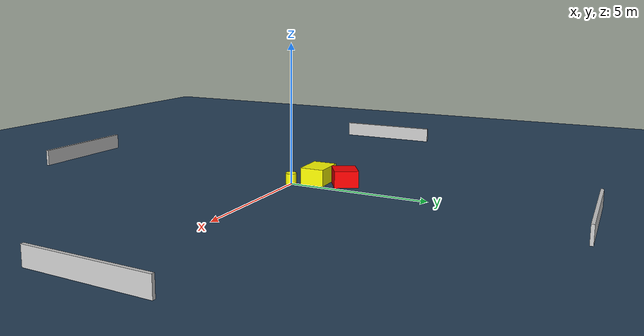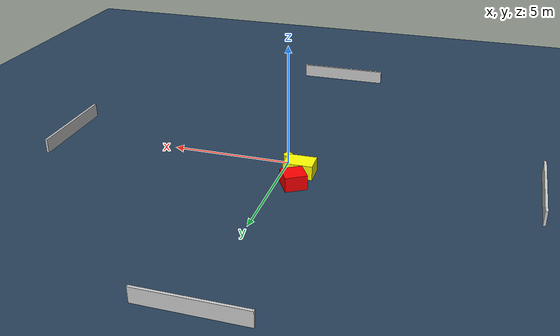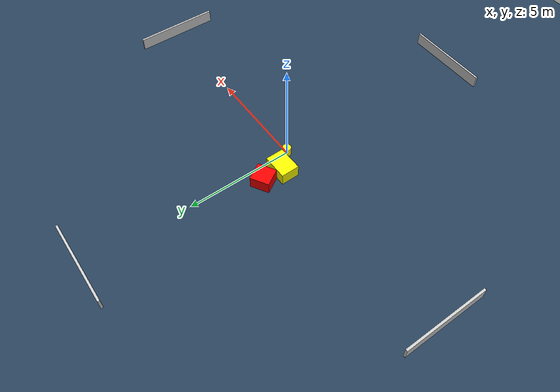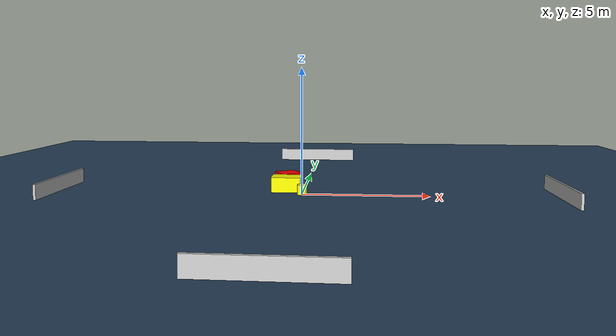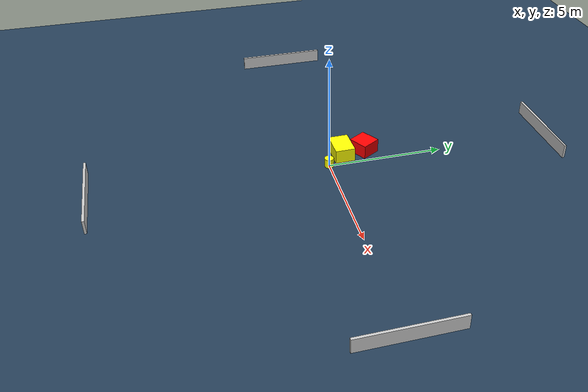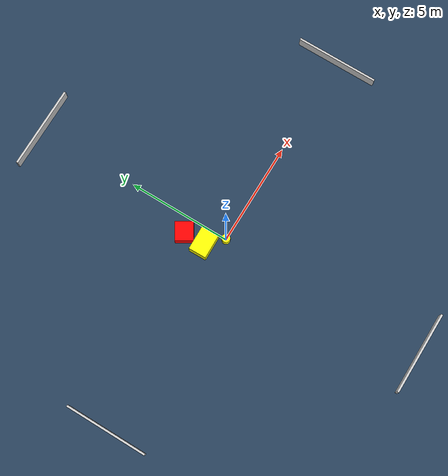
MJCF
<?xml version="1.0" ?>
<mujoco model="generated_environment">
  <option timestep="0.01" integrator="RK4" cone="elliptic"/>
  <default>
    <geom density="1"/>
  </default>
  <asset>
    <texture builtin="gradient" height="3072" name="skybox" rgb1="0.3 0.5 0.7" rgb2="0 0 0" type="skybox" width="512"/>
    <texture builtin="checker" height="300" name="groundplane" rgb1="0.2 0.3 0.4" rgb2="0.1 0.2 0.3" type="2d" width="300"/>
    <material name="groundplane" reflectance="0.2" texrepeat="5 5" texture="groundplane"/>
  </asset>
  <worldbody>
    <light dir="0 0 -1" directional="true" pos="0 0 1.5"/>
    <geom condim="3" friction="0.5 0.005 0.001" material="groundplane" name="floor" pos="0 0 0" size="0 0 0.05" type="plane"/>
    <body name="walls">
      <geom name="wall_1" condim="4" pos="-10.0 0.0 0.3" rgba="0.800000011920929 0.800000011920929 0.800000011920929 1.0" size="0.05 2.0 0.3" type="box"/>
      <geom name="wall_2" condim="4" pos="10.0 0.0 0.3" rgba="0.800000011920929 0.800000011920929 0.800000011920929 1.0" size="0.05 2.0 0.3" type="box"/>
      <geom name="wall_3" condim="4" pos="0.0 -10.0 0.3" rgba="0.800000011920929 0.800000011920929 0.800000011920929 1.0" size="2.0 0.05 0.3" type="box"/>
      <geom name="wall_4" condim="4" pos="0.0 10.0 0.3" rgba="0.800000011920929 0.800000011920929 0.800000011920929 1.0" size="2.0 0.05 0.3" type="box"/>
    </body>
    <body name="robot">
      <joint name="joint_x" type="slide" pos="0 0 0" axis="1 0 0"/>
      <joint name="joint_y" type="slide" pos="0 0 0" axis="0 1 0"/>
      <geom name="robot" type="cylinder" pos="0.0 0.0 0.2" size="0.2 0.2 0.0" mass="5.0" friction="1.0 0.005 0.0001" condim="4" rgba="1.0 1.0 0.0 1.0"/>
    </body>
    <body name="obstacle_1_movable">
      <geom name="obstacle_1_movable" condim="4" pos="-0.7031588014249465 0.7447393031724318 0.3" euler="0 0 90.98744001354738" friction="0.0 0.005 0.001" rgba="1.0 1.0 0.0 1.0" size="0.43069246474395156 0.5943617455096417 0.3" type="box" mass="0.1"/>
      <joint type="free"/>
    </body>
    <body name="obstacle_2_static">
      <geom name="obstacle_2_static" condim="4" pos="-0.7332572455045406 1.7690997158934259 0.3" euler="0 0 31.144239505615413" friction="0.0 0.005 0.001" rgba="1.0 0.0 0.0 1.0" size="0.4440896895679284 0.42547171111441656 0.3" type="box"/>
    </body>
  </worldbody>
  <actuator>
    <motor name="actuator_x" joint="joint_x" gear="1" ctrlrange="-1 1"/>
    <motor name="actuator_y" joint="joint_y" gear="1" ctrlrange="-1 1"/>
  </actuator>
</mujoco>
